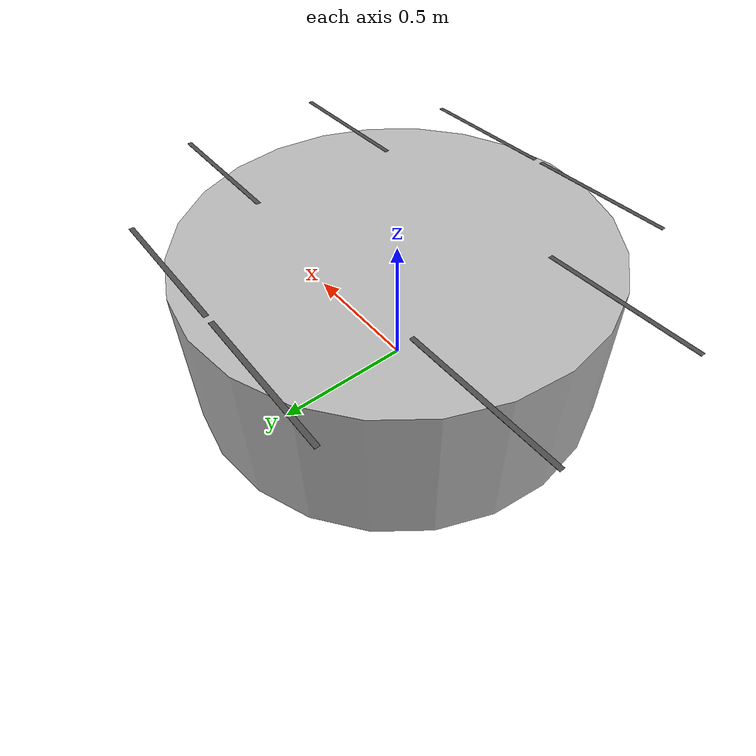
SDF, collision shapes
<?xml version="1.0" encoding="UTF-8"?>
<sdf version='1.9'>
  <model name='hovercrane_lidar'>
    <include merge='true'>
      <uri>hovercrane</uri>
    </include>
    <render_engine>ogre2</render_engine>

    <include merge='true'>
      <uri>model://mono_cam</uri>
      <pose>0.6 0 0.025 0 0.78540 0</pose>
    </include>
    <joint name="CameraJoint" type="fixed">
      <parent>base_link</parent>
      <child>mono_cam/base_link</child>
    </joint>

    <include merge='true'>
      <uri>model://lidar</uri>
      <pose>0.6 0 0.075 0 0.78540 0</pose>
    <plugin
      filename="ignition-gazebo-pose-publisher-system"
      name="gz::sim::systems::PosePublisher">
      <publish_link_pose>true</publish_link_pose>
      <publish_collision_pose>false</publish_collision_pose>
      <publish_visual_pose>false</publish_visual_pose>
      <publish_nested_model_pose>false</publish_nested_model_pose>
    </plugin>
    </include>
    <joint name="lidarJoint" type="fixed">
      <parent>base_link</parent>
      <child>lidar/base_link</child>
      <pose relative_to="base_link">0.6 0 0.3 0 0 0</pose>
    </joint>

    <!-- Just include it as is and it will end up in the frame of the UAV. Otherwise, it's becomes a challenge -->
    <include>
      <pose relative_to="base_link">0 0 .242 0 0 0</pose>
      <uri>
        simple_tag
      </uri>
      <name>beacon_rover</name>
      <plugin filename="libgz-sim-odometry-publisher-system" name="gz::sim::systems::OdometryPublisher">
        <dimensions>3</dimensions>
        <gaussianNoise>0</gaussianNoise>
      </plugin>
    </include>
  </model>
</sdf>

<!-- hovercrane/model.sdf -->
<sdf version='1.9'>
  <model name='hovercrane'>
    <pose>0 0 .24 0 0 0</pose>
    <self_collide>false</self_collide>
    <static>false</static>
    <link name="base_link">
      <inertial>
        <mass>2.0</mass>
        <inertia>
          <ixx>0.02166666666666667</ixx>
          <ixy>0</ixy>
          <ixz>0</ixz>
          <iyy>0.02166666666666667</iyy>
          <iyz>0</iyz>
          <izz>0.04000000000000001</izz>
        </inertia>
      </inertial>
      <gravity>true</gravity>
      <velocity_decay/>
      <visual name="base_link_visual">
        <pose>0 0 .31 0 0 0.3926991</pose>
        <geometry>
          <mesh>
            <scale>1 1 1</scale>
            <uri>model://hovercrane/meshes/hovercrane.dae</uri>
          </mesh>
        </geometry>
      </visual>
      <visual name="5010_motor_base_0">
        <pose>0.6777137 0.2807182 .342 0 0 .45</pose>
        <geometry>
          <mesh>
            <scale>1 1 1</scale>
            <uri>model://hovercrane/meshes/5010Base.dae</uri>
          </mesh>
        </geometry>
      </visual>
      <visual name="5010_motor_base_1">
        <pose>0.2807182 0.6777136788 .342 0 0 .45</pose>
        <geometry>
          <mesh>
            <scale>1 1 1</scale>
            <uri>model://hovercrane/meshes/5010Base.dae</uri>
          </mesh>
        </geometry>
      </visual>
      <visual name="5010_motor_base_2">
        <pose>-0.2807181972 0.6777136788 .342 0 0 .45</pose>
        <geometry>
          <mesh>
            <scale>1 1 1</scale>
            <uri>model://hovercrane/meshes/5010Base.dae</uri>
          </mesh>
        </geometry>
      </visual>
      <visual name="5010_motor_base_3">
        <pose>-0.6777136788 0.2807181972 .342 0 0 .45</pose>
        <geometry>
          <mesh>
            <scale>1 1 1</scale>
            <uri>model://hovercrane/meshes/5010Base.dae</uri>
          </mesh>
        </geometry>
      </visual>
      <visual name="5010_motor_base_4">
        <pose>-0.6777136788 -0.2807181972 .342 0 0 .45</pose>
        <geometry>
          <mesh>
            <scale>1 1 1</scale>
            <uri>model://hovercrane/meshes/5010Base.dae</uri>
          </mesh>
        </geometry>
      </visual>
      <visual name="5010_motor_base_5">
        <pose>-0.2807181972 -0.6777136788 .342 0 0 .45</pose>
        <geometry>
          <mesh>
            <scale>1 1 1</scale>
            <uri>model://hovercrane/meshes/5010Base.dae</uri>
          </mesh>
        </geometry>
      </visual>
      <visual name="5010_motor_base_6">
        <pose>0.2807181972 -0.6777136788 .342 0 0 .45</pose>
        <geometry>
          <mesh>
            <scale>1 1 1</scale>
            <uri>model://hovercrane/meshes/5010Base.dae</uri>
          </mesh>
        </geometry>
      </visual>
      <visual name="5010_motor_base_7">
        <pose>0.6777136788 -0.2807181972 .342 0 0 .45</pose>
        <geometry>
          <mesh>
            <scale>1 1 1</scale>
            <uri>model://hovercrane/meshes/5010Base.dae</uri>
          </mesh>
        </geometry>
      </visual>
      <collision name="base_link_collision_0">
        <pose>0 0 .03 0 0 0</pose>
        <geometry>
          <cylinder>
            <radius>.75</radius>
            <length>.55</length>
          </cylinder>
        </geometry>
        <surface>
          <contact>
            <ode>
              <min_depth>0.001</min_depth>
              <max_vel>0</max_vel>
            </ode>
          </contact>
          <friction>
            <ode/>
          </friction>
        </surface>
      </collision>
      <sensor name="air_pressure_sensor" type="air_pressure">
        <always_on>1</always_on>
        <update_rate>50</update_rate>
        <air_pressure>
          <pressure>
            <noise type="gaussian">
              <mean>0</mean>
              <stddev>0.01</stddev>
            </noise>
          </pressure>
        </air_pressure>
      </sensor>
      <sensor name="imu_sensor" type="imu">
        <always_on>1</always_on>
        <update_rate>250</update_rate>
      </sensor>
    </link>
    <link name="rotor_0">
      <gravity>true</gravity>
      <self_collide>false</self_collide>
      <velocity_decay/>
      <pose>0.6777136788 0.2807181972 0.342 0 0 0</pose>
      <inertial>
          <mass>0.016076923076923075</mass>
          <inertia>
            <ixx>3.8464910483993325e-07</ixx>
            <iyy>2.6115851691700804e-05</iyy>
            <izz>2.649858234714004e-05</izz>
          </inertia>
        </inertial>
      <visual name="rotor_0_visual">
        <pose>.009 0.001 0.028 0 0 0</pose>
        <geometry>
          <mesh>
            <scale>2 2 2</scale>
            <uri>model://hovercrane/meshes/iris_prop_ccw.dae</uri>
          </mesh>
        </geometry>
        <material>
          <script>
            <name>Gazebo/DarkGrey</name>
            <uri>file://media/materials/scripts/gazebo.material</uri>
          </script>
        </material>
      </visual>
      <visual name="rotor_0_visual_motor_bell">
        <pose>0 0 0 0 0 0</pose>
        <geometry>
          <mesh>
            <scale>1 1 1</scale>
            <uri>model://hovercrane/meshes/5010Bell.dae</uri>
          </mesh>
        </geometry>
      </visual>
      <collision name="rotor_0_collision">
        <pose>0 0 0 0 0 0 </pose>
        <geometry>
          <box>
            <size>0.5334 0.016923076923076923 0.0008461538461538462</size>
          </box>
        </geometry>
        <surface>
          <contact>
            <ode>
              <min_depth>0.001</min_depth>
              <max_vel>0</max_vel>
            </ode>
          </contact>
          <friction>
            <ode/>
          </friction>
        </surface>
      </collision>
    </link>
    <joint name="rotor_0_joint" type="revolute">
      <parent>base_link</parent>
      <child>rotor_0</child>
      <axis>
        <xyz>0 0 1</xyz>
        <limit>
          <lower>-1e+16</lower>
          <upper>1e+16</upper>
        </limit>
        <dynamics>
          <spring_reference>0</spring_reference>
          <spring_stiffness>0</spring_stiffness>
        </dynamics>
      </axis>
    </joint>

    <link name="rotor_1">
      <gravity>true</gravity>
      <self_collide>false</self_collide>
      <velocity_decay/>
      <pose>0.2807181972 0.6777136788 0.342 0 0 0</pose>
      <inertial>
          <mass>0.016076923076923075</mass>
          <inertia>
            <ixx>3.8464910483993325e-07</ixx>
            <iyy>2.6115851691700804e-05</iyy>
            <izz>2.649858234714004e-05</izz>
          </inertia>
        </inertial>
      <visual name="rotor_1_visual">
        <pose>0.0015 0 0.028 0 0 0</pose>
        <geometry>
          <mesh>
            <scale>2 2 2</scale>
            <uri>model://hovercrane/meshes/iris_prop_cw.dae</uri>
          </mesh>
        </geometry>
        <material>
          <script>
            <name>Gazebo/DarkGrey</name>
            <uri>file://media/materials/scripts/gazebo.material</uri>
          </script>
        </material>
      </visual>
      <visual name="rotor_1_visual_motor_bell">
        <pose>0 0 0 0 0 0</pose>
        <geometry>
          <mesh>
            <scale>1 1 1</scale>
            <uri>model://hovercrane/meshes/5010Bell.dae</uri>
          </mesh>
        </geometry>
      </visual>
      <collision name="rotor_1_collision">
        <pose>0 0 0 0 0 0 </pose>
        <geometry>
          <box>
            <size>0.5334 0.016923076923076923 0.0008461538461538462</size>
          </box>
        </geometry>
        <surface>
          <contact>
            <ode>
              <min_depth>0.001</min_depth>
              <max_vel>0</max_vel>
            </ode>
          </contact>
          <friction>
            <ode/>
          </friction>
        </surface>
      </collision>
    </link>
    <joint name="rotor_1_joint" type="revolute">
      <parent>base_link</parent>
      <child>rotor_1</child>
      <axis>
        <xyz>0 0 1</xyz>
        <limit>
          <lower>-1e+16</lower>
          <upper>1e+16</upper>
        </limit>
        <dynamics>
          <spring_reference>0</spring_reference>
          <spring_stiffness>0</spring_stiffness>
        </dynamics>
      </axis>
    </joint>

    <link name="rotor_2">
      <gravity>true</gravity>
      <self_collide>false</self_collide>
      <velocity_decay/>
      <pose>-0.2807181972 0.6777136788 0.342 0 0 0</pose>
      <inertial>
          <mass>0.016076923076923075</mass>
          <inertia>
            <ixx>3.8464910483993325e-07</ixx>
            <iyy>2.6115851691700804e-05</iyy>
            <izz>2.649858234714004e-05</izz>
          </inertia>
        </inertial>
      <visual name="rotor_2_visual">
        <pose>.009 0.001 0.028 0 0 0</pose>
        <geometry>
          <mesh>
            <scale>2 2 2</scale>
            <uri>model://hovercrane/meshes/iris_prop_ccw.dae</uri>
          </mesh>
        </geometry>
        <material>
          <script>
            <name>Gazebo/DarkGrey</name>
            <uri>file://media/materials/scripts/gazebo.material</uri>
          </script>
        </material>
      </visual>
      <visual name="rotor_2_visual_motor_bell">
        <pose>0 0 0 0 0 0</pose>
        <geometry>
          <mesh>
            <scale>1 1 1</scale>
            <uri>model://hovercrane/meshes/5010Bell.dae</uri>
          </mesh>
        </geometry>
      </visual>
      <collision name="rotor_2_collision">
        <pose>0 0 0 0 0 0 </pose>
        <geometry>
          <box>
            <size>0.5334 0.016923076923076923 0.0008461538461538462</size>
          </box>
        </geometry>
        <surface>
          <contact>
            <ode>
              <min_depth>0.001</min_depth>
              <max_vel>0</max_vel>
            </ode>
          </contact>
          <friction>
            <ode/>
          </friction>
        </surface>
      </collision>
    </link>
    <joint name="rotor_2_joint" type="revolute">
      <parent>base_link</parent>
      <child>rotor_2</child>
      <axis>
        <xyz>0 0 1</xyz>
        <limit>
          <lower>-1e+16</lower>
          <upper>1e+16</upper>
        </limit>
        <dynamics>
          <spring_reference>0</spring_reference>
          <spring_stiffness>0</spring_stiffness>
        </dynamics>
      </axis>
    </joint>

    <link name="rotor_3">
      <gravity>true</gravity>
      <self_collide>false</self_collide>
      <velocity_decay/>
      <pose>-0.6777136788 0.2807181972 0.342 0 0 0</pose>
      <inertial>
          <mass>0.016076923076923075</mass>
          <inertia>
            <ixx>3.8464910483993325e-07</ixx>
            <iyy>2.6115851691700804e-05</iyy>
            <izz>2.649858234714004e-05</izz>
          </inertia>
        </inertial>
      <visual name="rotor_3_visual">
        <pose>0.0015 0 0.028 0 0 0</pose>
        <geometry>
          <mesh>
            <scale>2 2 2</scale>
            <uri>model://hovercrane/meshes/iris_prop_cw.dae</uri>
          </mesh>
        </geometry>
        <material>
          <script>
            <name>Gazebo/DarkGrey</name>
            <uri>file://media/materials/scripts/gazebo.material</uri>
          </script>
        </material>
      </visual>
      <visual name="rotor_3_visual_motor_bell">
        <pose>0 0 0 0 0 0</pose>
        <geometry>
          <mesh>
            <scale>1 1 1</scale>
            <uri>model://hovercrane/meshes/5010Bell.dae</uri>
          </mesh>
        </geometry>
      </visual>
      <collision name="rotor_3_collision">
        <pose>0 0 0 0 0 0 </pose>
        <geometry>
          <box>
            <size>0.5334 0.016923076923076923 0.0008461538461538462</size>
          </box>
        </geometry>
        <surface>
          <contact>
            <ode>
              <min_depth>0.001</min_depth>
              <max_vel>0</max_vel>
            </ode>
          </contact>
          <friction>
            <ode/>
          </friction>
        </surface>
      </collision>
    </link>
    <joint name="rotor_3_joint" type="revolute">
      <parent>base_link</parent>
      <child>rotor_3</child>
      <axis>
        <xyz>0 0 1</xyz>
        <limit>
          <lower>-1e+16</lower>
          <upper>1e+16</upper>
        </limit>
        <dynamics>
          <spring_reference>0</spring_reference>
          <spring_stiffness>0</spring_stiffness>
        </dynamics>
      </axis>
    </joint>

    <link name="rotor_4">
      <gravity>true</gravity>
      <self_collide>false</self_collide>
      <velocity_decay/>
      <pose>-0.6777136788 -0.2807181972 0.342 0 0 0</pose>
      <inertial>
          <mass>0.016076923076923075</mass>
          <inertia>
            <ixx>3.8464910483993325e-07</ixx>
            <iyy>2.6115851691700804e-05</iyy>
            <izz>2.649858234714004e-05</izz>
          </inertia>
        </inertial>
      <visual name="rotor_4_visual">
        <pose>.009 0.001 0.028 0 0 0</pose>
        <geometry>
          <mesh>
            <scale>2 2 2</scale>
            <uri>model://hovercrane/meshes/iris_prop_ccw.dae</uri>
          </mesh>
        </geometry>
        <material>
          <script>
            <name>Gazebo/DarkGrey</name>
            <uri>file://media/materials/scripts/gazebo.material</uri>
          </script>
        </material>
      </visual>
      <visual name="rotor_4_visual_motor_bell">
        <pose>0 0 0 0 0 0</pose>
        <geometry>
          <mesh>
            <scale>1 1 1</scale>
            <uri>model://hovercrane/meshes/5010Bell.dae</uri>
          </mesh>
        </geometry>
      </visual>
      <collision name="rotor_4_collision">
        <pose>0 0 0 0 0 0 </pose>
        <geometry>
          <box>
            <size>0.5334 0.016923076923076923 0.0008461538461538462</size>
          </box>
        </geometry>
        <surface>
          <contact>
            <ode>
              <min_depth>0.001</min_depth>
              <max_vel>0</max_vel>
            </ode>
          </contact>
          <friction>
            <ode/>
          </friction>
        </surface>
      </collision>
    </link>
    <joint name="rotor_4_joint" type="revolute">
      <parent>base_link</parent>
      <child>rotor_4</child>
      <axis>
        <xyz>0 0 1</xyz>
        <limit>
          <lower>-1e+16</lower>
          <upper>1e+16</upper>
        </limit>
        <dynamics>
          <spring_reference>0</spring_reference>
          <spring_stiffness>0</spring_stiffness>
        </dynamics>
      </axis>
    </joint>
    <link name="rotor_5">
      <gravity>true</gravity>
      <self_collide>false</self_collide>
      <velocity_decay/>
      <pose>-0.2807181972 -0.6777136788 0.342 0 0 0</pose>
      <inertial>
          <mass>0.016076923076923075</mass>
          <inertia>
            <ixx>3.8464910483993325e-07</ixx>
            <iyy>2.6115851691700804e-05</iyy>
            <izz>2.649858234714004e-05</izz>
          </inertia>
        </inertial>
      <visual name="rotor_5_visual">
        <pose>0.0015 0 0.028 0 0 0</pose>
        <geometry>
          <mesh>
            <scale>2 2 2</scale>
            <uri>model://hovercrane/meshes/iris_prop_cw.dae</uri>
          </mesh>
        </geometry>
        <material>
          <script>
            <name>Gazebo/DarkGrey</name>
            <uri>file://media/materials/scripts/gazebo.material</uri>
          </script>
        </material>
      </visual>
      <visual name="rotor_5_visual_motor_bell">
        <pose>0 0 0 0 0 0</pose>
        <geometry>
          <mesh>
            <scale>1 1 1</scale>
            <uri>model://hovercrane/meshes/5010Bell.dae</uri>
          </mesh>
        </geometry>
      </visual>
      <collision name="rotor_5_collision">
        <pose>0 0 0 0 0 0 </pose>
        <geometry>
          <box>
            <size>0.5334 0.016923076923076923 0.0008461538461538462</size>
          </box>
        </geometry>
        <surface>
          <contact>
            <ode>
              <min_depth>0.001</min_depth>
              <max_vel>0</max_vel>
            </ode>
          </contact>
          <friction>
            <ode/>
          </friction>
        </surface>
      </collision>
    </link>
    <joint name="rotor_5_joint" type="revolute">
      <parent>base_link</parent>
      <child>rotor_5</child>
      <axis>
        <xyz>0 0 1</xyz>
        <limit>
          <lower>-1e+16</lower>
          <upper>1e+16</upper>
        </limit>
        <dynamics>
          <spring_reference>0</spring_reference>
          <spring_stiffness>0</spring_stiffness>
        </dynamics>
      </axis>
    </joint>
    <link name="rotor_6">
      <gravity>true</gravity>
      <self_collide>false</self_collide>
      <velocity_decay/>
      <pose>0.2807181972 -0.6777136788 0.342 0 0 0</pose>
      <inertial>
          <mass>0.016076923076923075</mass>
          <inertia>
            <ixx>3.8464910483993325e-07</ixx>
            <iyy>2.6115851691700804e-05</iyy>
            <izz>2.649858234714004e-05</izz>
          </inertia>
        </inertial>
      <visual name="rotor_6_visual">
        <pose>.009 0.001 0.028 0 0 0</pose>
        <geometry>
          <mesh>
            <scale>2 2 2</scale>
            <uri>model://hovercrane/meshes/iris_prop_ccw.dae</uri>
          </mesh>
        </geometry>
        <material>
          <script>
            <name>Gazebo/DarkGrey</name>
            <uri>file://media/materials/scripts/gazebo.material</uri>
          </script>
        </material>
      </visual>
      <visual name="rotor_6_visual_motor_bell">
        <pose>0 0 0 0 0 0</pose>
        <geometry>
          <mesh>
            <scale>1 1 1</scale>
            <uri>model://hovercrane/meshes/5010Bell.dae</uri>
          </mesh>
        </geometry>
      </visual>
      <collision name="rotor_6_collision">
        <pose>0 0 0 0 0 0 </pose>
        <geometry>
          <box>
            <size>0.5334 0.016923076923076923 0.0008461538461538462</size>
          </box>
        </geometry>
        <surface>
          <contact>
            <ode>
              <min_depth>0.001</min_depth>
              <max_vel>0</max_vel>
            </ode>
          </contact>
          <friction>
            <ode/>
          </friction>
        </surface>
      </collision>
    </link>
    <joint name="rotor_6_joint" type="revolute">
      <parent>base_link</parent>
      <child>rotor_6</child>
      <axis>
        <xyz>0 0 1</xyz>
        <limit>
          <lower>-1e+16</lower>
          <upper>1e+16</upper>
        </limit>
        <dynamics>
          <spring_reference>0</spring_reference>
          <spring_stiffness>0</spring_stiffness>
        </dynamics>
      </axis>
    </joint>
    <link name="rotor_7">
      <gravity>true</gravity>
      <self_collide>false</self_collide>
      <velocity_decay/>
      <pose>0.6777136788 -0.2807181972 0.342 0 0 0</pose>
      <inertial>
          <mass>0.016076923076923075</mass>
          <inertia>
            <ixx>3.8464910483993325e-07</ixx>
            <iyy>2.6115851691700804e-05</iyy>
            <izz>2.649858234714004e-05</izz>
          </inertia>
        </inertial>
      <visual name="rotor_7_visual">
        <pose>.0015 0 0.028 0 0 0</pose>
        <geometry>
          <mesh>
            <scale>2 2 2</scale>
            <uri>model://hovercrane/meshes/iris_prop_cw.dae</uri>
          </mesh>
        </geometry>
        <material>
          <script>
            <name>Gazebo/DarkGrey</name>
            <uri>file://media/materials/scripts/gazebo.material</uri>
          </script>
        </material>
      </visual>
      <visual name="rotor_7_visual_motor_bell">
        <pose>0 0 0 0 0 0</pose>
        <geometry>
          <mesh>
            <scale>1 1 1</scale>
            <uri>model://hovercrane/meshes/5010Bell.dae</uri>
          </mesh>
        </geometry>
      </visual>
      <collision name="rotor_7_collision">
        <pose>0 0 0 0 0 0 </pose>
        <geometry>
          <box>
            <size>0.5334 0.016923076923076923 0.0008461538461538462</size>
          </box>
        </geometry>
        <surface>
          <contact>
            <ode>
              <min_depth>0.001</min_depth>
              <max_vel>0</max_vel>
            </ode>
          </contact>
          <friction>
            <ode/>
          </friction>
        </surface>
      </collision>
    </link>
    <joint name="rotor_7_joint" type="revolute">
      <parent>base_link</parent>
      <child>rotor_7</child>
      <axis>
        <xyz>0 0 1</xyz>
        <limit>
          <lower>-1e+16</lower>
          <upper>1e+16</upper>
        </limit>
        <dynamics>
          <spring_reference>0</spring_reference>
          <spring_stiffness>0</spring_stiffness>
        </dynamics>
      </axis>
    </joint>

   <plugin filename="gz-sim-multicopter-motor-model-system" name="gz::sim::systems::MulticopterMotorModel">
      <jointName>rotor_0_joint</jointName>
      <linkName>rotor_0</linkName>
      <turningDirection>ccw</turningDirection>
      <timeConstantUp>0.0125</timeConstantUp>
      <timeConstantDown>0.025</timeConstantDown>
      <maxRotVelocity>1000.0</maxRotVelocity>
      <motorConstant>8.54858e-06</motorConstant>
      <momentConstant>0.016</momentConstant>
      <commandSubTopic>command/motor_speed</commandSubTopic>
      <motorNumber>4</motorNumber>
      <rotorDragCoefficient>8.06428e-05</rotorDragCoefficient>
      <rollingMomentCoefficient>1e-06</rollingMomentCoefficient>
      <rotorVelocitySlowdownSim>10</rotorVelocitySlowdownSim>
      <motorType>velocity</motorType>
    </plugin>
    <plugin filename="gz-sim-multicopter-motor-model-system" name="gz::sim::systems::MulticopterMotorModel">
      <jointName>rotor_1_joint</jointName>
      <linkName>rotor_1</linkName>
      <turningDirection>cw</turningDirection>
      <timeConstantUp>0.0125</timeConstantUp>
      <timeConstantDown>0.025</timeConstantDown>
      <maxRotVelocity>1000.0</maxRotVelocity>
      <motorConstant>8.54858e-06</motorConstant>
      <momentConstant>0.016</momentConstant>
      <commandSubTopic>command/motor_speed</commandSubTopic>
      <motorNumber>6</motorNumber>
      <rotorDragCoefficient>8.06428e-05</rotorDragCoefficient>
      <rollingMomentCoefficient>1e-06</rollingMomentCoefficient>
      <rotorVelocitySlowdownSim>10</rotorVelocitySlowdownSim>
      <motorType>velocity</motorType>
    </plugin>
    <plugin filename="gz-sim-multicopter-motor-model-system" name="gz::sim::systems::MulticopterMotorModel">
      <jointName>rotor_2_joint</jointName>
      <linkName>rotor_2</linkName>
      <turningDirection>ccw</turningDirection>
      <timeConstantUp>0.0125</timeConstantUp>
      <timeConstantDown>0.025</timeConstantDown>
      <maxRotVelocity>1000.0</maxRotVelocity>
      <motorConstant>8.54858e-06</motorConstant>
      <momentConstant>0.016</momentConstant>
      <commandSubTopic>command/motor_speed</commandSubTopic>
      <motorNumber>5</motorNumber>
      <rotorDragCoefficient>8.06428e-05</rotorDragCoefficient>
      <rollingMomentCoefficient>1e-06</rollingMomentCoefficient>
      <rotorVelocitySlowdownSim>10</rotorVelocitySlowdownSim>
      <motorType>velocity</motorType>
    </plugin>
    <plugin filename="gz-sim-multicopter-motor-model-system" name="gz::sim::systems::MulticopterMotorModel">
      <jointName>rotor_3_joint</jointName>
      <linkName>rotor_3</linkName>
      <turningDirection>cw</turningDirection>
      <timeConstantUp>0.0125</timeConstantUp>
      <timeConstantDown>0.025</timeConstantDown>
      <maxRotVelocity>1000.0</maxRotVelocity>
      <motorConstant>8.54858e-06</motorConstant>
      <momentConstant>0.016</momentConstant>
      <commandSubTopic>command/motor_speed</commandSubTopic>
      <motorNumber>1</motorNumber>
      <rotorDragCoefficient>8.06428e-05</rotorDragCoefficient>
      <rollingMomentCoefficient>1e-06</rollingMomentCoefficient>
      <rotorVelocitySlowdownSim>10</rotorVelocitySlowdownSim>
      <motorType>velocity</motorType>
    </plugin>
    <plugin filename="gz-sim-multicopter-motor-model-system" name="gz::sim::systems::MulticopterMotorModel">
      <jointName>rotor_4_joint</jointName>
      <linkName>rotor_4</linkName>
      <turningDirection>ccw</turningDirection>
      <timeConstantUp>0.0125</timeConstantUp>
      <timeConstantDown>0.025</timeConstantDown>
      <maxRotVelocity>1000.0</maxRotVelocity>
      <motorConstant>8.54858e-06</motorConstant>
      <momentConstant>0.016</momentConstant>
      <commandSubTopic>command/motor_speed</commandSubTopic>
      <motorNumber>3</motorNumber>
      <rotorDragCoefficient>8.06428e-05</rotorDragCoefficient>
      <rollingMomentCoefficient>1e-06</rollingMomentCoefficient>
      <rotorVelocitySlowdownSim>10</rotorVelocitySlowdownSim>
      <motorType>velocity</motorType>
    </plugin>
    <plugin filename="gz-sim-multicopter-motor-model-system" name="gz::sim::systems::MulticopterMotorModel">
      <jointName>rotor_5_joint</jointName>
      <linkName>rotor_5</linkName>
      <turningDirection>cw</turningDirection>
      <timeConstantUp>0.0125</timeConstantUp>
      <timeConstantDown>0.025</timeConstantDown>
      <maxRotVelocity>1000.0</maxRotVelocity>
      <motorConstant>8.54858e-06</motorConstant>
      <momentConstant>0.016</momentConstant>
      <commandSubTopic>command/motor_speed</commandSubTopic>
      <motorNumber>7</motorNumber>
      <rotorDragCoefficient>8.06428e-05</rotorDragCoefficient>
      <rollingMomentCoefficient>1e-06</rollingMomentCoefficient>
      <rotorVelocitySlowdownSim>10</rotorVelocitySlowdownSim>
      <motorType>velocity</motorType>
    </plugin>
    <plugin filename="gz-sim-multicopter-motor-model-system" name="gz::sim::systems::MulticopterMotorModel">
      <jointName>rotor_6_joint</jointName>
      <linkName>rotor_6</linkName>
      <turningDirection>ccw</turningDirection>
      <timeConstantUp>0.0125</timeConstantUp>
      <timeConstantDown>0.025</timeConstantDown>
      <maxRotVelocity>1000.0</maxRotVelocity>
      <motorConstant>8.54858e-06</motorConstant>
      <momentConstant>0.016</momentConstant>
      <commandSubTopic>command/motor_speed</commandSubTopic>
      <motorNumber>2</motorNumber>
      <rotorDragCoefficient>8.06428e-05</rotorDragCoefficient>
      <rollingMomentCoefficient>1e-06</rollingMomentCoefficient>
      <rotorVelocitySlowdownSim>10</rotorVelocitySlowdownSim>
      <motorType>velocity</motorType>
    </plugin>
    <plugin filename="gz-sim-multicopter-motor-model-system" name="gz::sim::systems::MulticopterMotorModel">
      <jointName>rotor_7_joint</jointName>
      <linkName>rotor_7</linkName>
      <turningDirection>cw</turningDirection>
      <timeConstantUp>0.0125</timeConstantUp>
      <timeConstantDown>0.025</timeConstantDown>
      <maxRotVelocity>1000.0</maxRotVelocity>
      <motorConstant>8.54858e-06</motorConstant>
      <momentConstant>0.016</momentConstant>
      <commandSubTopic>command/motor_speed</commandSubTopic>
      <motorNumber>0</motorNumber>
      <rotorDragCoefficient>8.06428e-05</rotorDragCoefficient>
      <rollingMomentCoefficient>1e-06</rollingMomentCoefficient>
      <rotorVelocitySlowdownSim>10</rotorVelocitySlowdownSim>
      <motorType>velocity</motorType>
    </plugin>
  </model>
</sdf>

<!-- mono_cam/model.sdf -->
<sdf version='1.9'>
  <model name='mono_cam'>
    <pose>0 0 0 0 0 0</pose>
    <self_collide>false</self_collide>
    <static>false</static>
    <link name="mono_cam/base_link">
      <inertial>
        <pose>0.03 0.03 0.03 0 0 0</pose>
        <mass>0.050</mass>
        <inertia>
          <ixx>0.00004</ixx>
          <ixy>0</ixy>
          <ixz>0</ixz>
          <iyy>0.00004</iyy>
          <iyz>0</iyz>
          <izz>0.00004</izz>
        </inertia>
      </inertial>
      <sensor name="imager" type="camera">
        <pose>0 0 0 0 0 0</pose>
        <camera>
          <horizontal_fov>1.74</horizontal_fov>
          <lens>
            <intrinsics>
                <!-- fx = fy = width / ( 2 * tan (hfov / 2 ) ) -->
                <fx>554.3</fx>
                <fy>554.3</fy>
                <!-- cx = ( width + 1 ) / 2 -->
                <cx>400.5</cx>
                <!-- cy = ( height + 1 ) / 2 -->
                <cy>300.5</cy>
                <s>0</s>
            </intrinsics>
          </lens>
          <image>
            <width>800</width>
            <height>600</height>
          </image>
          <clip>
            <near>0.1</near>
            <far>300</far>
          </clip>
        </camera>
        <always_on>1</always_on>
        <update_rate>5</update_rate>
        <visualize>true</visualize>
        <topic>hovercrane/camera/mono</topic>
      </sensor>
      <gravity>true</gravity>
      <velocity_decay/>
    </link>
  </model>
</sdf>

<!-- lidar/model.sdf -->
<sdf version='1.9'>
  <model name='lidar'>
    <pose>0 0 0 0 0 0</pose>
    <self_collide>false</self_collide>
    <static>false</static>
    <link name="lidar/base_link">
      <inertial>
        <pose>0 0 0.03585 0 0 0</pose>
        <mass>0.83</mass>
        <inertia>
          <ixx>0.0009080594249999999</ixx>
          <ixy>0</ixy>
          <ixz>0</ixz>
          <iyy>0.0009080594249999999</iyy>
          <iyz>0</iyz>
          <izz>0.0011049624</izz>
        </inertia>
      </inertial>
      <collision name="lidar/collision">
        <pose>0 0 0.03585 0 0 0</pose>
        <geometry>
          <cylinder>
            <radius>0.0516</radius>
            <length>0.0717</length>
          </cylinder>
        </geometry>
      </collision>
      <visual name="lidar/visual">
        <pose>0 0 0 0 0 0</pose>
        <geometry>
          <mesh>
            <scale>1 1 1</scale>
            <uri>model://lidar/meshes/lidar_3d_v1.dae</uri>
          </mesh>
        </geometry>
      </visual>
      <sensor name='gpu_lidar' type='gpu_lidar'>"
        <pose>0 0 0 0 0 0</pose>
        <update_rate>10</update_rate>
        <ray>
          <scan>
            <horizontal>
              <samples>640</samples>
              <resolution>1</resolution>
              <min_angle>-1.396263</min_angle>
              <max_angle>1.396263</max_angle>
            </horizontal>
            <vertical>
              <samples>1</samples>
              <resolution>0.01</resolution>
              <min_angle>0</min_angle>
              <max_angle>0</max_angle>
            </vertical>
          </scan>
          <range>
            <min>0.08</min>
            <max>100.0</max>
            <resolution>0.01</resolution>
          </range>
        </ray>
        <always_on>1</always_on>
        <visualize>true</visualize>
      </sensor>
      <gravity>true</gravity>
      <velocity_decay/>
    </link>
  </model>
</sdf>

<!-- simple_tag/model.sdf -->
<sdf version='1.9'>
  <model name='simple_tag'>
    <self_collide>false</self_collide>
    <static>false</static>
     <link name="link">
      <visual name="visual">
        <geometry>
          <cylinder>
            <length>0.005</length>
            <radius>0.01</radius>
          </cylinder>
        </geometry>
      </visual>

      <collision name="collision">
        <geometry>
          <cylinder>
            <length>0.005</length>
            <radius>0.01</radius>
          </cylinder>
        </geometry>
      </collision>
    </link>
  </model>
</sdf>
